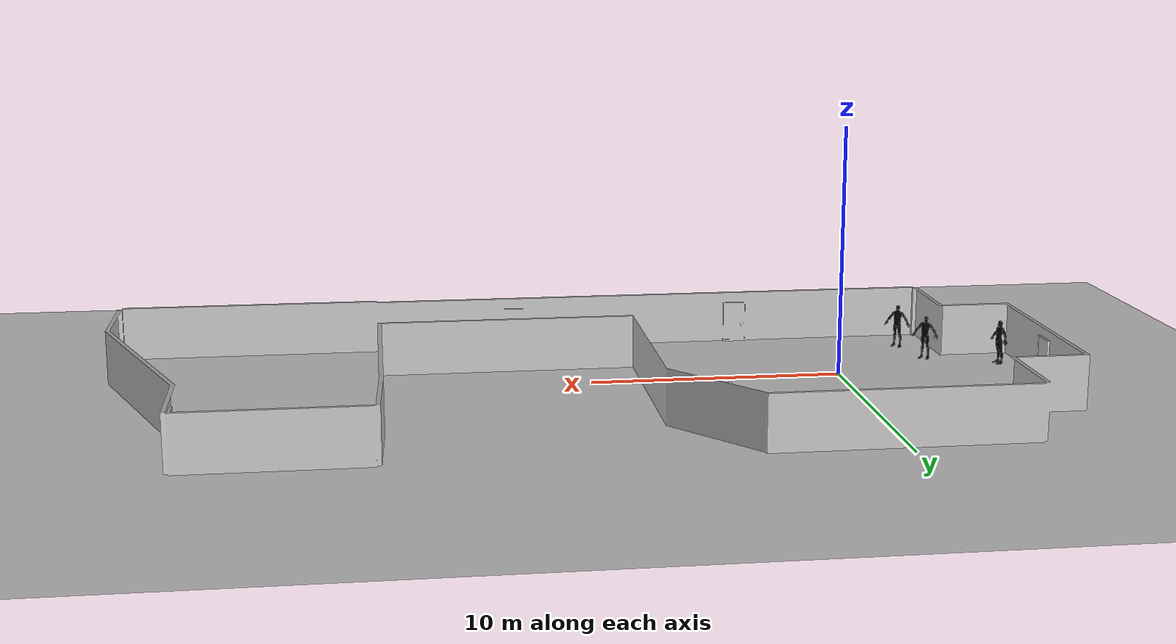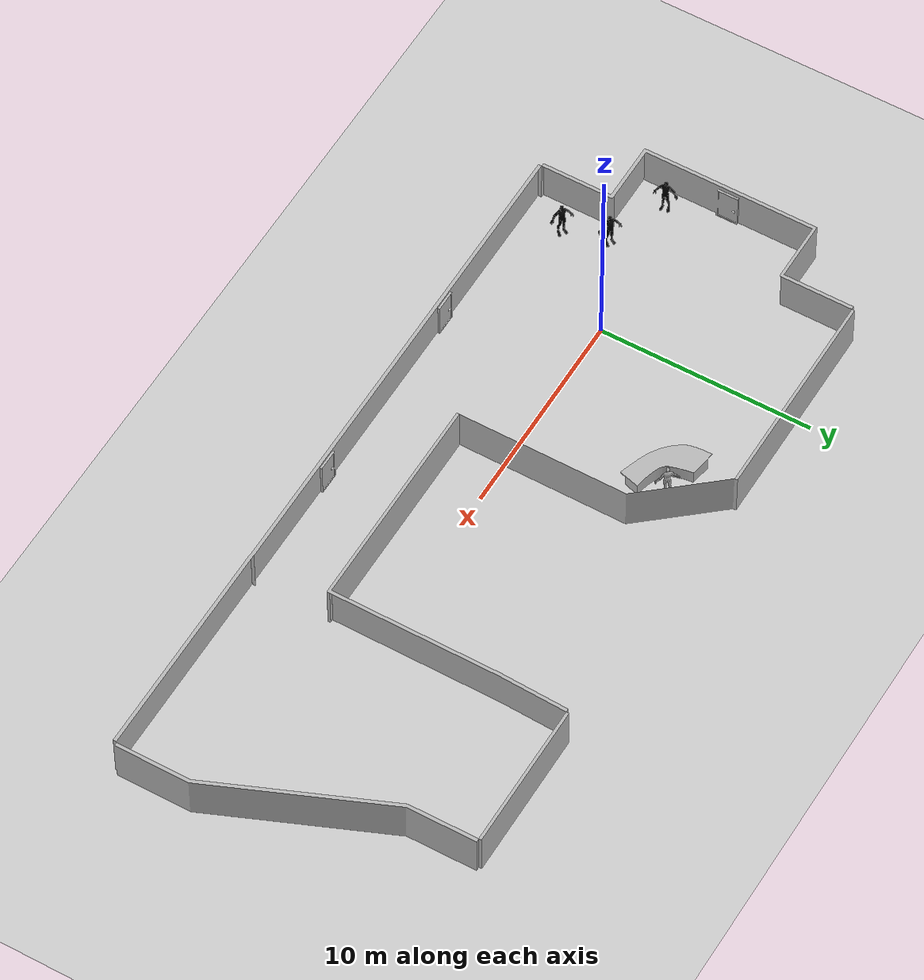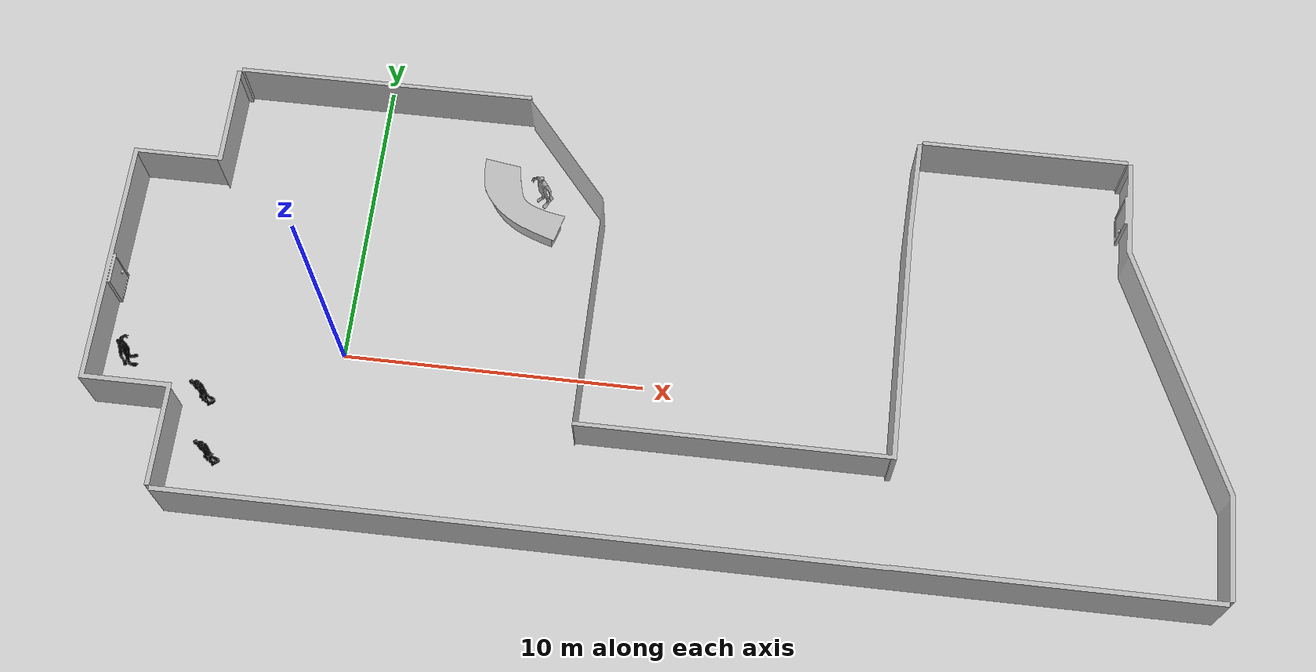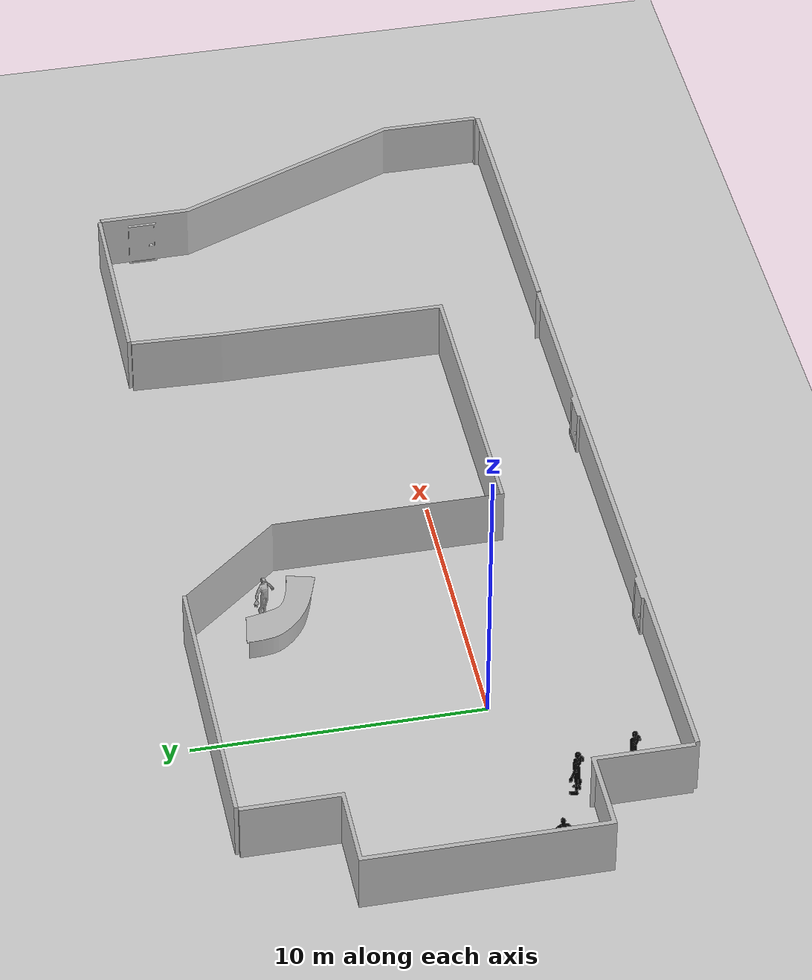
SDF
<sdf version="1.6">
 <world name="default">
  <light name="sun" type="directional">
   <pose>0 0 10 0 -0 0</pose>
   <diffuse>0.8 0.8 0.8 1</diffuse>
   <specular>0.6 0.6 0.6 1</specular>
   <attenuation>
    <range>1000</range>
    <constant>0.9</constant>
    <linear>0.01</linear>
    <quadratic>0.001</quadratic>
   </attenuation>
   <direction>-0.5 0.1 -0.9</direction>
  </light>
  <model name="man">
   <static>1</static>
   <link name="link">
    <collision name="collision">
     <geometry><mesh><scale>1 1 1</scale><uri>model://man/meshes/man.dae</uri></mesh></geometry>
    </collision>
    <visual name="visual">
     <geometry><mesh><scale>1 1 1</scale><uri>model://man/meshes/man.dae</uri></mesh></geometry>
    </visual>
   </link>
   <pose>5.82819 6.46741 0 0 0 -0.756459</pose>
  </model>
  <model name="office">
   <static>1</static>
   <link name="link">
    <collision name="collision">
     <geometry><mesh><scale>1 1 1</scale><uri>model://office/meshes/office.dae</uri></mesh></geometry>
    </collision>
    <visual name="visual">
     <geometry><mesh><scale>1 1 1</scale><uri>model://office/meshes/office.dae</uri></mesh></geometry>
    </visual>
   </link>
   <pose>12.518 0.066409 0 0 -0 0</pose>
  </model>
  <gravity>0 0 -9.8</gravity>
  <magnetic_field>6e-06 2.3e-05 -4.2e-05</magnetic_field>
  <atmosphere type="adiabatic"/>
  <physics name="default_physics" default="0" type="ode">
   <max_step_size>0.001</max_step_size>
   <real_time_factor>1</real_time_factor>
   <real_time_update_rate>1000</real_time_update_rate>
  </physics>
  <scene><ambient>0.4 0.4 0.4 1</ambient><background>0.7 0.7 0.7 1</background><shadows>0</shadows></scene>
  <audio><device>default</device></audio>
  <spherical_coordinates>
   <surface_model>EARTH_WGS84</surface_model>
   <latitude_deg>0</latitude_deg>
   <longitude_deg>0</longitude_deg>
   <elevation>0</elevation>
   <heading_deg>0</heading_deg>
  </spherical_coordinates>
  <model name="man_red_0">
   <link name="link">
    <inertial>
     <mass>1</mass>
     <inertia><ixx>1</ixx><ixy>0</ixy><ixz>0</ixz><iyy>1</iyy><iyz>0</iyz><izz>1</izz></inertia>
    </inertial>
    <visual name="visual">
     <geometry><mesh><scale>1 1 1</scale><uri>model://man/meshes/man.dae</uri></mesh></geometry>
     <material>
      <shader type="vertex"><normal_map>__default__</normal_map></shader>
      <script><name>ModelPreview_1::link::visual_MATERIAL_</name><uri>__default__</uri></script>
      <ambient>1 0 0 1</ambient>
      <diffuse>0 0 0 1</diffuse>
      <specular>0 0 0 1</specular>
      <emissive>0 0 0 1</emissive>
     </material>
    </visual>
    <collision name="collision">
     <geometry><mesh><uri>model://man/meshes/man.dae</uri><scale>1 1 1</scale></mesh></geometry>
     <surface>
      <friction>
       <ode><mu>1</mu><mu2>1</mu2><fdir1>0 0 0</fdir1><slip1>0</slip1><slip2>0</slip2></ode>
       <torsional>
        <coefficient>1</coefficient>
        <patch_radius>0</patch_radius>
        <surface_radius>0</surface_radius>
        <use_patch_radius>1</use_patch_radius>
        <ode><slip>0</slip></ode>
       </torsional>
      </friction>
      <bounce><restitution_coefficient>0</restitution_coefficient><threshold>1e+06</threshold></bounce>
      <contact>
       <collide_without_contact>0</collide_without_contact>
       <collide_without_contact_bitmask>1</collide_without_contact_bitmask>
       <collide_bitmask>1</collide_bitmask>
       <ode>
        <soft_cfm>0</soft_cfm>
        <soft_erp>0.2</soft_erp>
        <kp>1e+13</kp>
        <kd>1</kd>
        <max_vel>0.01</max_vel>
        <min_depth>0</min_depth>
       </ode>
       <bullet>
        <split_impulse>1</split_impulse>
        <split_impulse_penetration_threshold>-0.01</split_impulse_penetration_threshold>
        <soft_cfm>0</soft_cfm>
        <soft_erp>0.2</soft_erp>
        <kp>1e+13</kp>
        <kd>1</kd>
       </bullet>
      </contact>
     </surface>
    </collision>
   </link>
   <static>1</static>
   <pose>-3.66896 -4.05307 0 0 -0 2.54515</pose>
  </model>
  <model name="man_red_0_clone">
   <link name="link">
    <inertial>
     <mass>1</mass>
     <inertia><ixx>1</ixx><ixy>0</ixy><ixz>0</ixz><iyy>1</iyy><iyz>0</iyz><izz>1</izz></inertia>
    </inertial>
    <visual name="visual">
     <geometry><mesh><scale>1 1 1</scale><uri>model://man/meshes/man.dae</uri></mesh></geometry>
     <material>
      <shader type="vertex"><normal_map>__default__</normal_map></shader>
      <script><name>ModelPreview_1::link::visual_MATERIAL_</name><uri>__default__</uri></script>
      <ambient>1 0 0 1</ambient>
      <diffuse>0 0 0 1</diffuse>
      <specular>0 0 0 1</specular>
      <emissive>0 0 0 1</emissive>
     </material>
    </visual>
    <collision name="collision">
     <geometry><mesh><uri>model://man/meshes/man.dae</uri><scale>1 1 1</scale></mesh></geometry>
     <surface>
      <friction>
       <ode><mu>1</mu><mu2>1</mu2><fdir1>0 0 0</fdir1><slip1>0</slip1><slip2>0</slip2></ode>
       <torsional>
        <coefficient>1</coefficient>
        <patch_radius>0</patch_radius>
        <surface_radius>0</surface_radius>
        <use_patch_radius>1</use_patch_radius>
        <ode><slip>0</slip></ode>
       </torsional>
      </friction>
      <bounce><restitution_coefficient>0</restitution_coefficient><threshold>1e+06</threshold></bounce>
      <contact>
       <collide_without_contact>0</collide_without_contact>
       <collide_without_contact_bitmask>1</collide_without_contact_bitmask>
       <collide_bitmask>1</collide_bitmask>
       <ode>
        <soft_cfm>0</soft_cfm>
        <soft_erp>0.2</soft_erp>
        <kp>1e+13</kp>
        <kd>1</kd>
        <max_vel>0.01</max_vel>
        <min_depth>0</min_depth>
       </ode>
       <bullet>
        <split_impulse>1</split_impulse>
        <split_impulse_penetration_threshold>-0.01</split_impulse_penetration_threshold>
        <soft_cfm>0</soft_cfm>
        <soft_erp>0.2</soft_erp>
        <kp>1e+13</kp>
        <kd>1</kd>
       </bullet>
      </contact>
     </surface>
    </collision>
   </link>
   <static>1</static>
   <pose>-6.99892 -0.899708 0 0 -0 1.76047</pose>
  </model>
  <model name="man_red_0_clone_0">
   <link name="link">
    <inertial>
     <mass>1</mass>
     <inertia><ixx>1</ixx><ixy>0</ixy><ixz>0</ixz><iyy>1</iyy><iyz>0</iyz><izz>1</izz></inertia>
    </inertial>
    <visual name="visual">
     <geometry><mesh><scale>1 1 1</scale><uri>model://man/meshes/man.dae</uri></mesh></geometry>
     <material>
      <shader type="vertex"><normal_map>__default__</normal_map></shader>
      <script><name>ModelPreview_1::link::visual_MATERIAL_</name><uri>__default__</uri></script>
      <ambient>1 0 0 1</ambient>
      <diffuse>0 0 0 1</diffuse>
      <specular>0 0 0 1</specular>
      <emissive>0 0 0 1</emissive>
     </material>
    </visual>
    <collision name="collision">
     <geometry><mesh><uri>model://man/meshes/man.dae</uri><scale>1 1 1</scale></mesh></geometry>
     <surface>
      <friction>
       <ode><mu>1</mu><mu2>1</mu2><fdir1>0 0 0</fdir1><slip1>0</slip1><slip2>0</slip2></ode>
       <torsional>
        <coefficient>1</coefficient>
        <patch_radius>0</patch_radius>
        <surface_radius>0</surface_radius>
        <use_patch_radius>1</use_patch_radius>
        <ode><slip>0</slip></ode>
       </torsional>
      </friction>
      <bounce><restitution_coefficient>0</restitution_coefficient><threshold>1e+06</threshold></bounce>
      <contact>
       <collide_without_contact>0</collide_without_contact>
       <collide_without_contact_bitmask>1</collide_without_contact_bitmask>
       <collide_bitmask>1</collide_bitmask>
       <ode>
        <soft_cfm>0</soft_cfm>
        <soft_erp>0.2</soft_erp>
        <kp>1e+13</kp>
        <kd>1</kd>
        <max_vel>0.01</max_vel>
        <min_depth>0</min_depth>
       </ode>
       <bullet>
        <split_impulse>1</split_impulse>
        <split_impulse_penetration_threshold>-0.01</split_impulse_penetration_threshold>
        <soft_cfm>0</soft_cfm>
        <soft_erp>0.2</soft_erp>
        <kp>1e+13</kp>
        <kd>1</kd>
       </bullet>
      </contact>
     </surface>
    </collision>
   </link>
   <static>1</static>
   <pose>-4.22466 -2.02378 0 0 -0 2.54515</pose>
  </model>
  <model name="officeDeskCurved">
   <static>1</static>
   <link name="link">
    <collision name="collision">
     <geometry>
      <mesh><scale>1 1 1</scale><uri>model://officeDeskCurved/meshes/officeDeskCurved.dae</uri></mesh>
     </geometry>
    </collision>
    <visual name="visual">
     <geometry>
      <mesh><scale>1 1 1</scale><uri>model://officeDeskCurved/meshes/officeDeskCurved.dae</uri></mesh>
     </geometry>
    </visual>
   </link>
   <pose>5.21706 6.12134 0 0 -0 2.78981</pose>
  </model>
  <model name="ground_plane">
   <static>1</static>
   <link name="link">
    <collision name="collision">
     <geometry><plane><normal>0 0 1</normal><size>100 100</size></plane></geometry>
     <surface>
      <contact><collide_bitmask>65535</collide_bitmask></contact>
      <friction><ode><mu>100</mu><mu2>50</mu2></ode></friction>
     </surface>
    </collision>
    <visual name="visual">
     <cast_shadows>0</cast_shadows>
     <geometry><plane><normal>0 0 1</normal><size>100 100</size></plane></geometry>
     <material>
      <script><uri>file://media/materials/scripts/gazebo.material</uri><name>Gazebo/Grey</name></script>
     </material>
    </visual>
   </link>
   <pose>0.549 0.213442 0 0 -0 0</pose>
  </model>
 </world>
</sdf>
